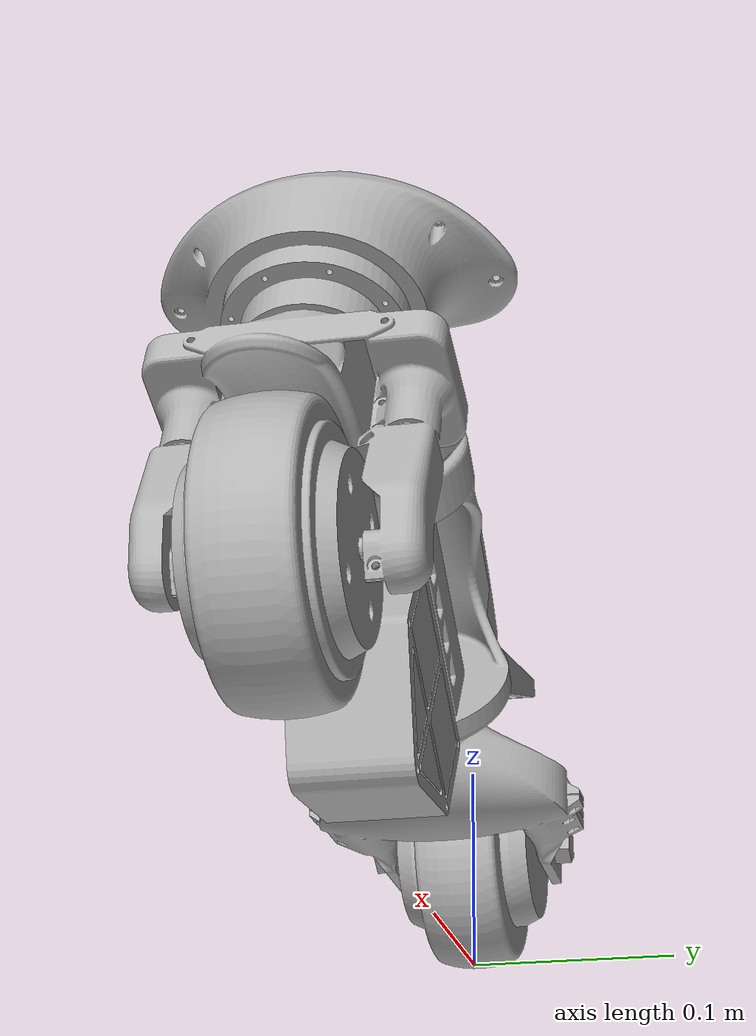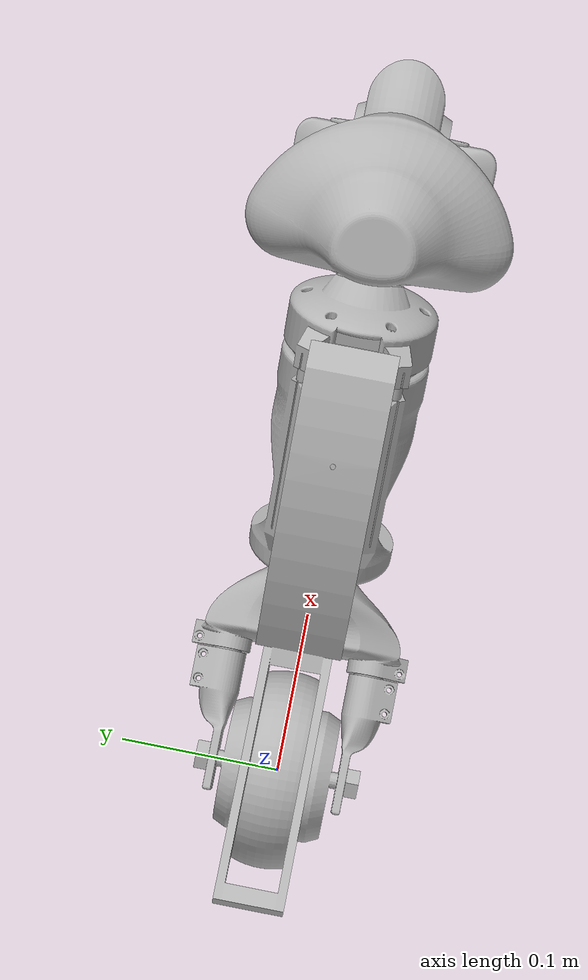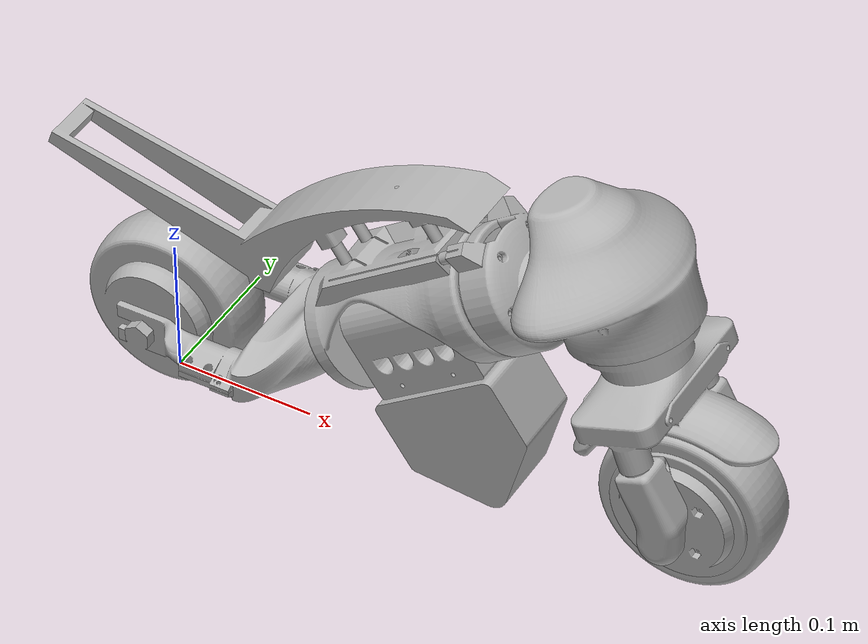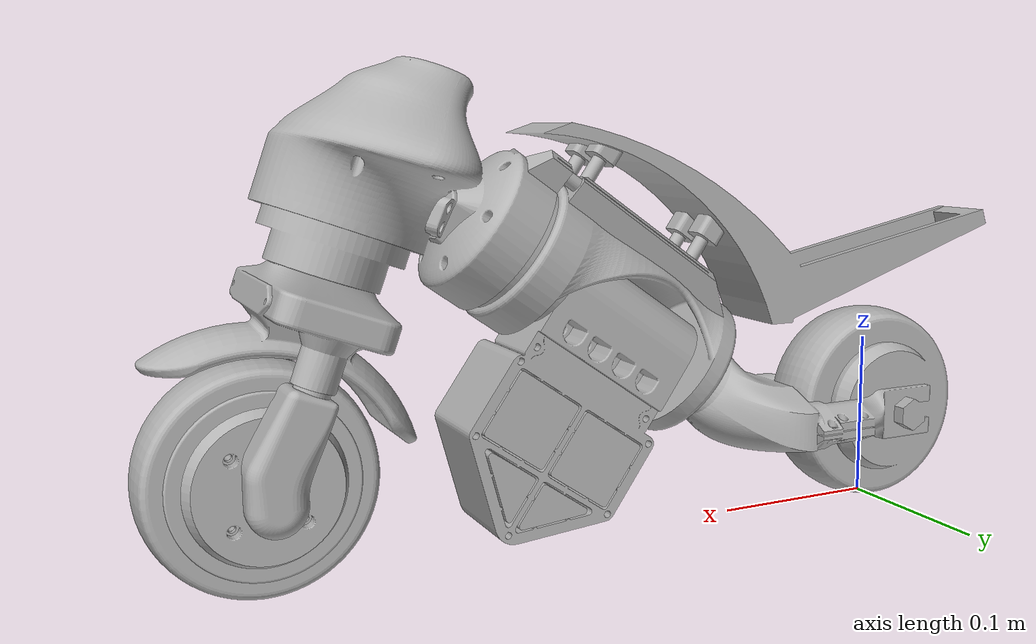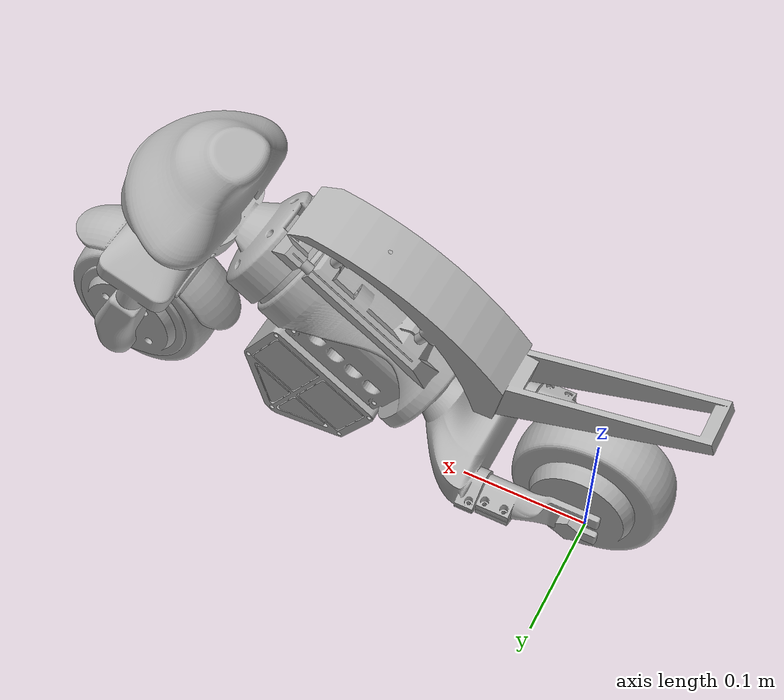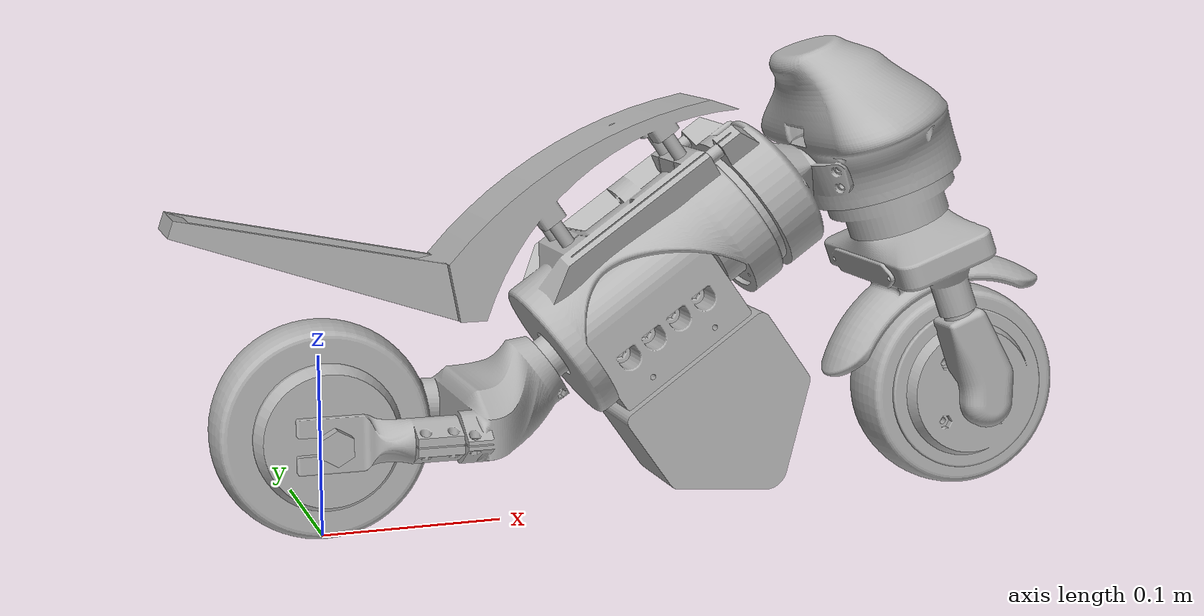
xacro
<?xml version="1.0" ?>
<robot name="new_wheel" xmlns:xacro="http://www.ros.org/wiki/xacro">

<xacro:include filename="$(find new_wheel_description)/urdf/materials.xacro" />
<xacro:include filename="$(find new_wheel_description)/urdf/new_wheel.trans" />
<xacro:include filename="$(find new_wheel_description)/urdf/new_wheel.gazebo" />
<link name="base_link">
  <inertial>
    <origin xyz="0.1671326733817208 4.910783905868962e-18 0.21939362572721385" rpy="0 0 0"/>
    <mass value="1.4129910899997937e-05"/>
    <inertia ixx="0.0" iyy="0.0" izz="0.0" ixy="-0.0" iyz="-0.0" ixz="-0.0"/>
  </inertial>
  <visual>
    <origin xyz="0 0 0" rpy="0 0 0"/>
    <geometry>
      <mesh filename="package://new_wheel_description/meshes/base_link.stl" scale="0.001 0.001 0.001"/>
    </geometry>
    <material name="silver"/>
  </visual>
  <collision>
    <origin xyz="0 0 0" rpy="0 0 0"/>
    <geometry>
      <mesh filename="package://new_wheel_description/meshes/base_link.stl" scale="0.001 0.001 0.001"/>
    </geometry>
  </collision>
</link>

<link name="seat_1">
  <inertial>
    <origin xyz="-0.06945037038883939 4.781618216607395e-10 -0.04748455315424713" rpy="0 0 0"/>
    <mass value="0.20377216074479634"/>
    <inertia ixx="0.000235" iyy="0.000937" izz="0.00079" ixy="-0.0" iyz="-0.0" ixz="-0.000256"/>
  </inertial>
  <visual>
    <origin xyz="-0.167021 -0.0 -0.218372" rpy="0 0 0"/>
    <geometry>
      <mesh filename="package://new_wheel_description/meshes/seat_1.stl" scale="0.001 0.001 0.001"/>
    </geometry>
    <material name="silver"/>
  </visual>
  <collision>
    <origin xyz="-0.167021 -0.0 -0.218372" rpy="0 0 0"/>
    <geometry>
      <mesh filename="package://new_wheel_description/meshes/seat_1.stl" scale="0.001 0.001 0.001"/>
    </geometry>
  </collision>
</link>

<link name="Component46_1">
  <inertial>
    <origin xyz="-0.02903784943789131 -0.0125 -0.028267276347661796" rpy="0 0 0"/>
    <mass value="0.0036417342040413058"/>
    <inertia ixx="3e-06" iyy="6e-06" izz="5e-06" ixy="0.0" iyz="0.0" ixz="-3e-06"/>
  </inertial>
  <visual>
    <origin xyz="-0.194424 -0.0125 -0.214927" rpy="0 0 0"/>
    <geometry>
      <mesh filename="package://new_wheel_description/meshes/Component46_1.stl" scale="0.001 0.001 0.001"/>
    </geometry>
    <material name="silver"/>
  </visual>
  <collision>
    <origin xyz="-0.194424 -0.0125 -0.214927" rpy="0 0 0"/>
    <geometry>
      <mesh filename="package://new_wheel_description/meshes/Component46_1.stl" scale="0.001 0.001 0.001"/>
    </geometry>
  </collision>
</link>

<link name="weight_shell_1">
  <inertial>
    <origin xyz="-0.03511002454507356 -0.012499873149083147 -0.05966550276458646" rpy="0 0 0"/>
    <mass value="0.17425085414107583"/>
    <inertia ixx="0.000341" iyy="0.000507" izz="0.000369" ixy="-0.0" iyz="-0.0" ixz="-0.000135"/>
  </inertial>
  <visual>
    <origin xyz="-0.204748 -0.0125 -0.200183" rpy="0 0 0"/>
    <geometry>
      <mesh filename="package://new_wheel_description/meshes/weight_shell_1.stl" scale="0.001 0.001 0.001"/>
    </geometry>
    <material name="silver"/>
  </visual>
  <collision>
    <origin xyz="-0.204748 -0.0125 -0.200183" rpy="0 0 0"/>
    <geometry>
      <mesh filename="package://new_wheel_description/meshes/weight_shell_1.stl" scale="0.001 0.001 0.001"/>
    </geometry>
  </collision>
</link>

<link name="Component34_1">
  <inertial>
    <origin xyz="-0.03129195954316938 -0.025977000000000004 -0.02191050423404972" rpy="0 0 0"/>
    <mass value="0.01131978664941476"/>
    <inertia ixx="1.2e-05" iyy="1.2e-05" izz="1.6e-05" ixy="0.0" iyz="0.0" ixz="-6e-06"/>
  </inertial>
  <visual>
    <origin xyz="-0.214733 -0.025977 -0.202242" rpy="0 0 0"/>
    <geometry>
      <mesh filename="package://new_wheel_description/meshes/Component34_1.stl" scale="0.001 0.001 0.001"/>
    </geometry>
    <material name="silver"/>
  </visual>
  <collision>
    <origin xyz="-0.214733 -0.025977 -0.202242" rpy="0 0 0"/>
    <geometry>
      <mesh filename="package://new_wheel_description/meshes/Component34_1.stl" scale="0.001 0.001 0.001"/>
    </geometry>
  </collision>
</link>

<link name="head_1">
  <inertial>
    <origin xyz="0.0701300752631756 -0.026029980126374544 0.0021930211548369105" rpy="0 0 0"/>
    <mass value="0.4512467085694608"/>
    <inertia ixx="0.000787" iyy="0.000721" izz="0.000898" ixy="0.0" iyz="-1e-06" ixz="-0.000109"/>
  </inertial>
  <visual>
    <origin xyz="-0.229559 -0.025977 -0.212624" rpy="0 0 0"/>
    <geometry>
      <mesh filename="package://new_wheel_description/meshes/head_1.stl" scale="0.001 0.001 0.001"/>
    </geometry>
    <material name="silver"/>
  </visual>
  <collision>
    <origin xyz="-0.229559 -0.025977 -0.212624" rpy="0 0 0"/>
    <geometry>
      <mesh filename="package://new_wheel_description/meshes/head_1.stl" scale="0.001 0.001 0.001"/>
    </geometry>
  </collision>
</link>

<link name="back_rmd_1">
  <inertial>
    <origin xyz="-0.023549188027445683 -5.331081291247928e-18 -0.016631559564693366" rpy="0 0 0"/>
    <mass value="0.8103609000511297"/>
    <inertia ixx="0.000479" iyy="0.000435" izz="0.000461" ixy="-0.0" iyz="0.0" ixz="3.1e-05"/>
  </inertial>
  <visual>
    <origin xyz="-0.264013 0.0 -0.184864" rpy="0 0 0"/>
    <geometry>
      <mesh filename="package://new_wheel_description/meshes/back_rmd_1.stl" scale="0.001 0.001 0.001"/>
    </geometry>
    <material name="silver"/>
  </visual>
  <collision>
    <origin xyz="-0.264013 0.0 -0.184864" rpy="0 0 0"/>
    <geometry>
      <mesh filename="package://new_wheel_description/meshes/back_rmd_1.stl" scale="0.001 0.001 0.001"/>
    </geometry>
  </collision>
</link>

<link name="weight_printed_1">
  <inertial>
    <origin xyz="-0.009945916020285217 -0.002067372044876527 -0.06413262683863159" rpy="0 0 0"/>
    <mass value="0.3445611239037064"/>
    <inertia ixx="0.000562" iyy="0.000868" izz="0.000457" ixy="1.3e-05" iyz="-1.9e-05" ixz="0.000142"/>
  </inertial>
  <visual>
    <origin xyz="-0.216256 -0.0 -0.151424" rpy="0 0 0"/>
    <geometry>
      <mesh filename="package://new_wheel_description/meshes/weight_printed_1.stl" scale="0.001 0.001 0.001"/>
    </geometry>
    <material name="silver"/>
  </visual>
  <collision>
    <origin xyz="-0.216256 -0.0 -0.151424" rpy="0 0 0"/>
    <geometry>
      <mesh filename="package://new_wheel_description/meshes/weight_printed_1.stl" scale="0.001 0.001 0.001"/>
    </geometry>
  </collision>
</link>

<link name="weight_stainless_1">
  <inertial>
    <origin xyz="-0.014100208670546621 0.025 -0.02022197723546365" rpy="0 0 0"/>
    <mass value="0.8602235118007558"/>
    <inertia ixx="0.000536" iyy="0.000786" izz="0.000608" ixy="0.0" iyz="0.0" ixz="-9.8e-05"/>
  </inertial>
  <visual>
    <origin xyz="-0.24087 0.025 -0.078176" rpy="0 0 0"/>
    <geometry>
      <mesh filename="package://new_wheel_description/meshes/weight_stainless_1.stl" scale="0.001 0.001 0.001"/>
    </geometry>
    <material name="silver"/>
  </visual>
  <collision>
    <origin xyz="-0.24087 0.025 -0.078176" rpy="0 0 0"/>
    <geometry>
      <mesh filename="package://new_wheel_description/meshes/weight_stainless_1.stl" scale="0.001 0.001 0.001"/>
    </geometry>
  </collision>
</link>

<link name="Spine_1">
  <inertial>
    <origin xyz="-0.060617111585091865 -4.097332922980377e-18 -0.04244447709330133" rpy="0 0 0"/>
    <mass value="0.031214864606068177"/>
    <inertia ixx="1.6e-05" iyy="4e-05" izz="2.8e-05" ixy="-0.0" iyz="-0.0" ixz="-1.7e-05"/>
  </inertial>
  <visual>
    <origin xyz="-0.216256 0.0 -0.151424" rpy="0 0 0"/>
    <geometry>
      <mesh filename="package://new_wheel_description/meshes/Spine_1.stl" scale="0.001 0.001 0.001"/>
    </geometry>
    <material name="silver"/>
  </visual>
  <collision>
    <origin xyz="-0.216256 0.0 -0.151424" rpy="0 0 0"/>
    <geometry>
      <mesh filename="package://new_wheel_description/meshes/Spine_1.stl" scale="0.001 0.001 0.001"/>
    </geometry>
  </collision>
</link>

<link name="Component35_1">
  <inertial>
    <origin xyz="-0.00409621971952151 -1.5885708681195284e-17 -0.0028679399005014233" rpy="0 0 0"/>
    <mass value="0.008945685081096893"/>
    <inertia ixx="2e-06" iyy="1e-06" izz="2e-06" ixy="-0.0" iyz="0.0" ixz="1e-06"/>
  </inertial>
  <visual>
    <origin xyz="-0.142451 0.0 -0.099745" rpy="0 0 0"/>
    <geometry>
      <mesh filename="package://new_wheel_description/meshes/Component35_1.stl" scale="0.001 0.001 0.001"/>
    </geometry>
    <material name="silver"/>
  </visual>
  <collision>
    <origin xyz="-0.142451 0.0 -0.099745" rpy="0 0 0"/>
    <geometry>
      <mesh filename="package://new_wheel_description/meshes/Component35_1.stl" scale="0.001 0.001 0.001"/>
    </geometry>
  </collision>
</link>

<link name="back_fork_1">
  <inertial>
    <origin xyz="-0.022009373054062337 0.0005625895096350063 -0.00981892302000599" rpy="0 0 0"/>
    <mass value="0.2225221456300135"/>
    <inertia ixx="0.000247" iyy="0.000221" izz="0.000405" ixy="-3e-06" iyz="1e-06" ixz="-2.1e-05"/>
  </inertial>
  <visual>
    <origin xyz="-0.10649 0.0 -0.074565" rpy="0 0 0"/>
    <geometry>
      <mesh filename="package://new_wheel_description/meshes/back_fork_1.stl" scale="0.001 0.001 0.001"/>
    </geometry>
    <material name="silver"/>
  </visual>
  <collision>
    <origin xyz="-0.10649 0.0 -0.074565" rpy="0 0 0"/>
    <geometry>
      <mesh filename="package://new_wheel_description/meshes/back_fork_1.stl" scale="0.001 0.001 0.001"/>
    </geometry>
  </collision>
</link>

<link name="Component8_1">
  <inertial>
    <origin xyz="-0.0009999999999999593 -0.04399999999999998 2.0816681711721685e-17" rpy="0 0 0"/>
    <mass value="0.009613273519984755"/>
    <inertia ixx="1.9e-05" iyy="2e-06" izz="2.1e-05" ixy="-0.0" iyz="0.0" ixz="0.0"/>
  </inertial>
  <visual>
    <origin xyz="-0.066 -0.044 -0.06" rpy="0 0 0"/>
    <geometry>
      <mesh filename="package://new_wheel_description/meshes/Component8_1.stl" scale="0.001 0.001 0.001"/>
    </geometry>
    <material name="silver"/>
  </visual>
  <collision>
    <origin xyz="-0.066 -0.044 -0.06" rpy="0 0 0"/>
    <geometry>
      <mesh filename="package://new_wheel_description/meshes/Component8_1.stl" scale="0.001 0.001 0.001"/>
    </geometry>
  </collision>
</link>

<link name="Back_wheel_1">
  <inertial>
    <origin xyz="-8.410301750963835e-15 -0.04199999999999999 -2.7755575615628914e-17" rpy="0 0 0"/>
    <mass value="2.2147185729899577"/>
    <inertia ixx="0.002244" iyy="0.00332" izz="0.002244" ixy="0.0" iyz="-0.0" ixz="-0.0"/>
  </inertial>
  <visual>
    <origin xyz="-0.0 -0.042 -0.06" rpy="0 0 0"/>
    <geometry>
      <mesh filename="package://new_wheel_description/meshes/Back_wheel_1.stl" scale="0.001 0.001 0.001"/>
    </geometry>
    <material name="silver"/>
  </visual>
  <collision>
    <origin xyz="-0.0 -0.042 -0.06" rpy="0 0 0"/>
    <geometry>
      <mesh filename="package://new_wheel_description/meshes/Back_wheel_1.stl" scale="0.001 0.001 0.001"/>
    </geometry>
  </collision>
</link>

<link name="front_rmd_1">
  <inertial>
    <origin xyz="0.00572498775013347 1.0704610911545706e-17 -0.015387851448897039" rpy="0 0 0"/>
    <mass value="0.8071474748814768"/>
    <inertia ixx="0.000444" iyy="0.000433" izz="0.000493" ixy="0.0" iyz="0.0" ixz="-2.3e-05"/>
  </inertial>
  <visual>
    <origin xyz="-0.328526 -0.0 -0.201424" rpy="0 0 0"/>
    <geometry>
      <mesh filename="package://new_wheel_description/meshes/front_rmd_1.stl" scale="0.001 0.001 0.001"/>
    </geometry>
    <material name="silver"/>
  </visual>
  <collision>
    <origin xyz="-0.328526 -0.0 -0.201424" rpy="0 0 0"/>
    <geometry>
      <mesh filename="package://new_wheel_description/meshes/front_rmd_1.stl" scale="0.001 0.001 0.001"/>
    </geometry>
  </collision>
</link>

<link name="front_fork_1">
  <inertial>
    <origin xyz="0.013420143089053871 -6.66867512122037e-06 -0.036264956291461856" rpy="0 0 0"/>
    <mass value="0.2629933761257592"/>
    <inertia ixx="0.000536" iyy="0.000389" izz="0.000439" ixy="0.0" iyz="0.0" ixz="4.5e-05"/>
  </inertial>
  <visual>
    <origin xyz="-0.344088 -0.0 -0.158668" rpy="0 0 0"/>
    <geometry>
      <mesh filename="package://new_wheel_description/meshes/front_fork_1.stl" scale="0.001 0.001 0.001"/>
    </geometry>
    <material name="silver"/>
  </visual>
  <collision>
    <origin xyz="-0.344088 -0.0 -0.158668" rpy="0 0 0"/>
    <geometry>
      <mesh filename="package://new_wheel_description/meshes/front_fork_1.stl" scale="0.001 0.001 0.001"/>
    </geometry>
  </collision>
</link>

<link name="Component4_1">
  <inertial>
    <origin xyz="-0.0025652589578538665 -0.04399999999999999 0.007047788799119312" rpy="0 0 0"/>
    <mass value="0.012497255575980207"/>
    <inertia ixx="2.9e-05" iyy="5e-06" izz="2.6e-05" ixy="0.0" iyz="0.0" ixz="1e-06"/>
  </inertial>
  <visual>
    <origin xyz="-0.361189 -0.044 -0.111683" rpy="0 0 0"/>
    <geometry>
      <mesh filename="package://new_wheel_description/meshes/Component4_1.stl" scale="0.001 0.001 0.001"/>
    </geometry>
    <material name="silver"/>
  </visual>
  <collision>
    <origin xyz="-0.361189 -0.044 -0.111683" rpy="0 0 0"/>
    <geometry>
      <mesh filename="package://new_wheel_description/meshes/Component4_1.stl" scale="0.001 0.001 0.001"/>
    </geometry>
  </collision>
</link>

<link name="Component20_1">
  <inertial>
    <origin xyz="2.7755575615628914e-16 -0.03199999999999998 5.551115123125783e-17" rpy="0 0 0"/>
    <mass value="0.0019792033717615726"/>
    <inertia ixx="1e-06" iyy="0.0" izz="1e-06" ixy="0.0" iyz="0.0" ixz="0.0"/>
  </inertial>
  <visual>
    <origin xyz="-0.38 -0.032 -0.06" rpy="0 0 0"/>
    <geometry>
      <mesh filename="package://new_wheel_description/meshes/Component20_1.stl" scale="0.001 0.001 0.001"/>
    </geometry>
    <material name="silver"/>
  </visual>
  <collision>
    <origin xyz="-0.38 -0.032 -0.06" rpy="0 0 0"/>
    <geometry>
      <mesh filename="package://new_wheel_description/meshes/Component20_1.stl" scale="0.001 0.001 0.001"/>
    </geometry>
  </collision>
</link>

<link name="Component17_1">
  <inertial>
    <origin xyz="2.6145752229922437e-14 -0.04500151730789331 -2.7755575615628914e-17" rpy="0 0 0"/>
    <mass value="0.13607525478847282"/>
    <inertia ixx="0.000139" iyy="0.000142" izz="0.000139" ixy="-0.0" iyz="0.0" ixz="-0.0"/>
  </inertial>
  <visual>
    <origin xyz="-0.38 -0.045 -0.06" rpy="0 0 0"/>
    <geometry>
      <mesh filename="package://new_wheel_description/meshes/Component17_1.stl" scale="0.001 0.001 0.001"/>
    </geometry>
    <material name="silver"/>
  </visual>
  <collision>
    <origin xyz="-0.38 -0.045 -0.06" rpy="0 0 0"/>
    <geometry>
      <mesh filename="package://new_wheel_description/meshes/Component17_1.stl" scale="0.001 0.001 0.001"/>
    </geometry>
  </collision>
</link>

<link name="Component16_1">
  <inertial>
    <origin xyz="1.7708057242771247e-14 -0.03 1.3877787807814457e-17" rpy="0 0 0"/>
    <mass value="0.5990577367424242"/>
    <inertia ixx="0.000266" iyy="0.000372" izz="0.000266" ixy="-0.0" iyz="0.0" ixz="0.0"/>
  </inertial>
  <visual>
    <origin xyz="-0.38 -0.03 -0.06" rpy="0 0 0"/>
    <geometry>
      <mesh filename="package://new_wheel_description/meshes/Component16_1.stl" scale="0.001 0.001 0.001"/>
    </geometry>
    <material name="silver"/>
  </visual>
  <collision>
    <origin xyz="-0.38 -0.03 -0.06" rpy="0 0 0"/>
    <geometry>
      <mesh filename="package://new_wheel_description/meshes/Component16_1.stl" scale="0.001 0.001 0.001"/>
    </geometry>
  </collision>
</link>

<link name="Component19_1">
  <inertial>
    <origin xyz="-1.2745360322696797e-13 0.0035000000000000066 1.3877787807814457e-17" rpy="0 0 0"/>
    <mass value="0.0023090706003885135"/>
    <inertia ixx="0.0" iyy="0.0" izz="0.0" ixy="0.0" iyz="0.0" ixz="0.0"/>
  </inertial>
  <visual>
    <origin xyz="-0.38 -0.02 -0.06" rpy="0 0 0"/>
    <geometry>
      <mesh filename="package://new_wheel_description/meshes/Component19_1.stl" scale="0.001 0.001 0.001"/>
    </geometry>
    <material name="silver"/>
  </visual>
  <collision>
    <origin xyz="-0.38 -0.02 -0.06" rpy="0 0 0"/>
    <geometry>
      <mesh filename="package://new_wheel_description/meshes/Component19_1.stl" scale="0.001 0.001 0.001"/>
    </geometry>
  </collision>
</link>

<link name="Component22_1">
  <inertial>
    <origin xyz="-1.2745360322696797e-13 -0.0035000000000000066 1.3877787807814457e-17" rpy="0 0 0"/>
    <mass value="0.0023090706003885135"/>
    <inertia ixx="0.0" iyy="0.0" izz="0.0" ixy="-0.0" iyz="-0.0" ixz="0.0"/>
  </inertial>
  <visual>
    <origin xyz="-0.38 0.02 -0.06" rpy="0 0 0"/>
    <geometry>
      <mesh filename="package://new_wheel_description/meshes/Component22_1.stl" scale="0.001 0.001 0.001"/>
    </geometry>
    <material name="silver"/>
  </visual>
  <collision>
    <origin xyz="-0.38 0.02 -0.06" rpy="0 0 0"/>
    <geometry>
      <mesh filename="package://new_wheel_description/meshes/Component22_1.stl" scale="0.001 0.001 0.001"/>
    </geometry>
  </collision>
</link>

<link name="Component21_1">
  <inertial>
    <origin xyz="-5.551115123125783e-17 -0.019999999999999987 -6.938893903907228e-18" rpy="0 0 0"/>
    <mass value="0.1016820929339349"/>
    <inertia ixx="0.000144" iyy="0.000258" izz="0.000144" ixy="0.0" iyz="0.0" ixz="-0.0"/>
  </inertial>
  <visual>
    <origin xyz="-0.38 -0.02 -0.06" rpy="0 0 0"/>
    <geometry>
      <mesh filename="package://new_wheel_description/meshes/Component21_1.stl" scale="0.001 0.001 0.001"/>
    </geometry>
    <material name="silver"/>
  </visual>
  <collision>
    <origin xyz="-0.38 -0.02 -0.06" rpy="0 0 0"/>
    <geometry>
      <mesh filename="package://new_wheel_description/meshes/Component21_1.stl" scale="0.001 0.001 0.001"/>
    </geometry>
  </collision>
</link>

<joint name="Rigid 1" type="fixed">
  <origin xyz="0.167021 0.0 0.218372" rpy="0 0 0"/>
  <parent link="base_link"/>
  <child link="seat_1"/>
</joint>

<joint name="Rigid 2" type="fixed">
  <origin xyz="0.027403 0.0125 -0.003445" rpy="0 0 0"/>
  <parent link="seat_1"/>
  <child link="Component46_1"/>
</joint>

<joint name="Rigid 3" type="fixed">
  <origin xyz="0.010324 0.0 -0.014744" rpy="0 0 0"/>
  <parent link="Component46_1"/>
  <child link="weight_shell_1"/>
</joint>

<joint name="Rigid 4" type="fixed">
  <origin xyz="0.009985 0.013477 0.002059" rpy="0 0 0"/>
  <parent link="weight_shell_1"/>
  <child link="Component34_1"/>
</joint>

<joint name="Rigid 5" type="fixed">
  <origin xyz="0.014826 0.0 0.010382" rpy="0 0 0"/>
  <parent link="Component34_1"/>
  <child link="head_1"/>
</joint>

<joint name="Rigid 6" type="fixed">
  <origin xyz="0.034454 -0.025977 -0.02776" rpy="0 0 0"/>
  <parent link="head_1"/>
  <child link="back_rmd_1"/>
</joint>

<joint name="Revolute_7" type="revolute">
  <origin xyz="-0.047757 0.0 -0.03344" rpy="0 0 0"/>
  <parent link="back_rmd_1"/>
  <child link="weight_printed_1"/>
  <axis xyz="-0.819152 0.0 -0.573576"/>
  <limit upper="1.047198" lower="-1.047198" effort="3.5" velocity="100"/>
</joint>

<joint name="Rigid 8" type="fixed">
  <origin xyz="0.024614 -0.025 -0.073248" rpy="0 0 0"/>
  <parent link="weight_printed_1"/>
  <child link="weight_stainless_1"/>
</joint>

<joint name="Rigid 9" type="fixed">
  <origin xyz="0.0 -0.0 0.0" rpy="0 0 0"/>
  <parent link="weight_printed_1"/>
  <child link="Spine_1"/>
</joint>

<joint name="Rigid 10" type="fixed">
  <origin xyz="-0.062297 -0.0125 -0.100438" rpy="0 0 0"/>
  <parent link="weight_shell_1"/>
  <child link="Component35_1"/>
</joint>

<joint name="Rigid 11" type="fixed">
  <origin xyz="-0.109766 0.0 -0.076859" rpy="0 0 0"/>
  <parent link="Spine_1"/>
  <child link="back_fork_1"/>
</joint>

<joint name="Rigid 12" type="fixed">
  <origin xyz="-0.04049 0.044 -0.014565" rpy="0 0 0"/>
  <parent link="back_fork_1"/>
  <child link="Component8_1"/>
</joint>

<joint name="Revolute_14" type="continuous">
  <origin xyz="-0.10649 0.042 -0.014565" rpy="0 0 0"/>
  <parent link="back_fork_1"/>
  <child link="Back_wheel_1"/>
  <axis xyz="0.0 1.0 0.0"/>
</joint>

<joint name="Rigid 16" type="fixed">
  <origin xyz="0.098967 -0.025977 -0.0112" rpy="0 0 0"/>
  <parent link="head_1"/>
  <child link="front_rmd_1"/>
</joint>

<joint name="Revolute_17" type="fixed">
  <origin xyz="0.015562 0.0 -0.042756" rpy="0 0 0"/>
  <parent link="front_rmd_1"/>
  <child link="front_fork_1"/>
</joint>

<joint name="Rigid 18" type="fixed">
  <origin xyz="0.017101 0.044 -0.046985" rpy="0 0 0"/>
  <parent link="front_fork_1"/>
  <child link="Component4_1"/>
</joint>

<joint name="Rigid 19" type="fixed">
  <origin xyz="0.035912 0.032 -0.098668" rpy="0 0 0"/>
  <parent link="front_fork_1"/>
  <child link="Component20_1"/>
</joint>

<joint name="Revolute_20" type="continuous">
  <origin xyz="0.0 0.013 0.0" rpy="0 0 0"/>
  <parent link="Component20_1"/>
  <child link="Component17_1"/>
  <axis xyz="0.0 1.0 0.0"/>
</joint>

<joint name="Rigid 21" type="fixed">
  <origin xyz="0.0 -0.015 0.0" rpy="0 0 0"/>
  <parent link="Component17_1"/>
  <child link="Component16_1"/>
</joint>

<joint name="Rigid 22" type="fixed">
  <origin xyz="0.0 -0.01 0.0" rpy="0 0 0"/>
  <parent link="Component16_1"/>
  <child link="Component19_1"/>
</joint>

<joint name="Rigid 23" type="fixed">
  <origin xyz="0.0 -0.05 0.0" rpy="0 0 0"/>
  <parent link="Component16_1"/>
  <child link="Component22_1"/>
</joint>

<joint name="Rigid 24" type="fixed">
  <origin xyz="0.0 -0.025 0.0" rpy="0 0 0"/>
  <parent link="Component17_1"/>
  <child link="Component21_1"/>
</joint>

</robot>

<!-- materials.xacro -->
<robot name="new_wheel" xmlns:xacro="http://www.ros.org/wiki/xacro" >

<material name="silver">
  <color rgba="0.700 0.700 0.700 1.000"/>
</material>

</robot>

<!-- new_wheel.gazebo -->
<robot name="new_wheel" xmlns:xacro="http://www.ros.org/wiki/xacro" >

<xacro:property name="body_color" value="Gazebo/Silver" />

<gazebo>
  <plugin name="control" filename="libgazebo_ros_control.so"/>
</gazebo>
<gazebo reference="base_link">
  <material>${body_color}</material>
  <mu1>0.2</mu1>
  <mu2>0.2</mu2>
  <selfCollide>true</selfCollide>
  <gravity>true</gravity>
  <sensor name="imu_sensor" type="imu">
    <always_on>true</always_on>
    <update_rate>0</update_rate>
    <visualize>true</visualize>
    <topic>__default_topic__</topic>
    <plugin filename="libgazebo_ros_imu_sensor.so" name="imu_plugin">
      <topicName>imu</topicName>
      <bodyName>imu_link</bodyName>
      <updateRateHZ>0</updateRateHZ>
      <gaussianNoise>0.0</gaussianNoise>
      <xyzOffset>0 0 0</xyzOffset>
      <rpyOffset>0 0 0</rpyOffset>
      <frameName>imu_link</frameName>
      <initialOrientationAsReference>false</initialOrientationAsReference>
    </plugin>
    <pose>0 0 0 0 0 0</pose>
  </sensor>
</gazebo>

<gazebo reference="seat_1">
  <material>${body_color}</material>
  <mu1>0.2</mu1>
  <mu2>0.2</mu2>
  <selfCollide>true</selfCollide>
</gazebo>

<gazebo reference="Component46_1">
  <material>${body_color}</material>
  <mu1>0.2</mu1>
  <mu2>0.2</mu2>
  <selfCollide>true</selfCollide>
</gazebo>

<gazebo reference="weight_shell_1">
  <material>${body_color}</material>
  <mu1>0.2</mu1>
  <mu2>0.2</mu2>
  <selfCollide>true</selfCollide>
</gazebo>

<gazebo reference="Component34_1">
  <material>${body_color}</material>
  <mu1>0.2</mu1>
  <mu2>0.2</mu2>
  <selfCollide>true</selfCollide>
</gazebo>

<gazebo reference="head_1">
  <material>${body_color}</material>
  <mu1>0.2</mu1>
  <mu2>0.2</mu2>
  <selfCollide>true</selfCollide>
</gazebo>

<gazebo reference="back_rmd_1">
  <material>${body_color}</material>
  <mu1>0.2</mu1>
  <mu2>0.2</mu2>
  <selfCollide>true</selfCollide>
</gazebo>

<gazebo reference="weight_printed_1">
  <material>${body_color}</material>
  <mu1>0.2</mu1>
  <mu2>0.2</mu2>
  <selfCollide>true</selfCollide>
</gazebo>

<gazebo reference="weight_stainless_1">
  <material>${body_color}</material>
  <mu1>0.2</mu1>
  <mu2>0.2</mu2>
  <selfCollide>true</selfCollide>
</gazebo>

<gazebo reference="Spine_1">
  <material>${body_color}</material>
  <mu1>0.2</mu1>
  <mu2>0.2</mu2>
  <selfCollide>true</selfCollide>
</gazebo>

<gazebo reference="Component35_1">
  <material>${body_color}</material>
  <mu1>0.2</mu1>
  <mu2>0.2</mu2>
  <selfCollide>true</selfCollide>
</gazebo>

<gazebo reference="back_fork_1">
  <material>${body_color}</material>
  <mu1>0.2</mu1>
  <mu2>0.2</mu2>
  <selfCollide>true</selfCollide>
</gazebo>

<gazebo reference="Component8_1">
  <material>${body_color}</material>
  <mu1>0.2</mu1>
  <mu2>0.2</mu2>
  <selfCollide>true</selfCollide>
</gazebo>

<gazebo reference="Back_wheel_1">
  <material>${body_color}</material>
  <mu1>0.2</mu1>
  <mu2>0.2</mu2>
  <selfCollide>true</selfCollide>
</gazebo>

<gazebo reference="front_rmd_1">
  <material>${body_color}</material>
  <mu1>0.2</mu1>
  <mu2>0.2</mu2>
  <selfCollide>true</selfCollide>
</gazebo>

<gazebo reference="front_fork_1">
  <material>${body_color}</material>
  <mu1>0.2</mu1>
  <mu2>0.2</mu2>
  <selfCollide>true</selfCollide>
</gazebo>

<gazebo reference="Component4_1">
  <material>${body_color}</material>
  <mu1>0.2</mu1>
  <mu2>0.2</mu2>
  <selfCollide>true</selfCollide>
</gazebo>

<gazebo reference="Component20_1">
  <material>${body_color}</material>
  <mu1>0.2</mu1>
  <mu2>0.2</mu2>
  <selfCollide>true</selfCollide>
</gazebo>

<gazebo reference="Component17_1">
  <material>${body_color}</material>
  <mu1>0.2</mu1>
  <mu2>0.2</mu2>
  <selfCollide>true</selfCollide>
</gazebo>

<gazebo reference="Component16_1">
  <material>${body_color}</material>
  <mu1>0.2</mu1>
  <mu2>0.2</mu2>
  <selfCollide>true</selfCollide>
</gazebo>

<gazebo reference="Component19_1">
  <material>${body_color}</material>
  <mu1>0.2</mu1>
  <mu2>0.2</mu2>
  <selfCollide>true</selfCollide>
</gazebo>

<gazebo reference="Component22_1">
  <material>${body_color}</material>
  <mu1>0.2</mu1>
  <mu2>0.2</mu2>
  <selfCollide>true</selfCollide>
</gazebo>

<gazebo reference="Component21_1">
  <material>${body_color}</material>
  <mu1>0.2</mu1>
  <mu2>0.2</mu2>
  <selfCollide>true</selfCollide>
</gazebo>

</robot>
